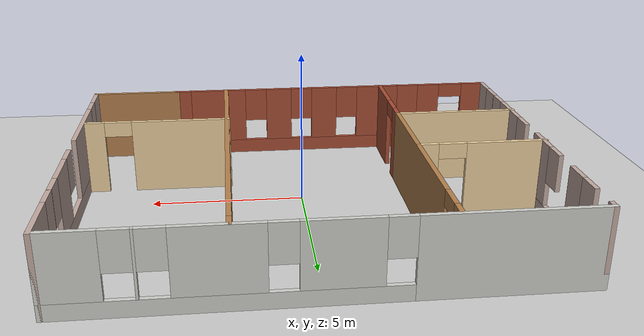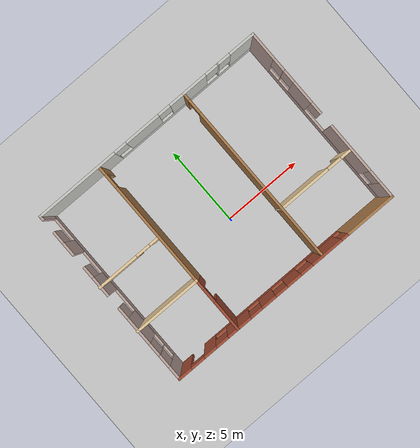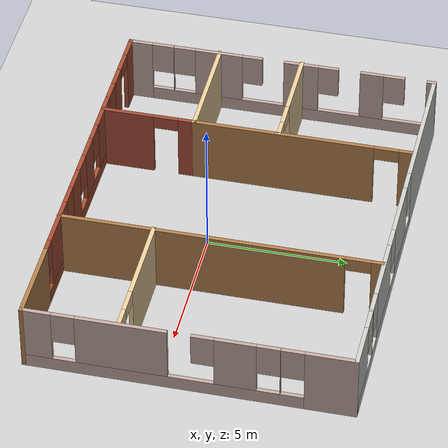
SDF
<sdf version="1.7">
 <world name="default">
  <light name="sun" type="directional">
   <pose>0 0 10 0 -0 0</pose>
   <diffuse>0.8 0.8 0.8 1</diffuse>
   <specular>0.2 0.2 0.2 1</specular>
   <attenuation>
    <range>1000</range>
    <constant>0.9</constant>
    <linear>0.01</linear>
    <quadratic>0.001</quadratic>
   </attenuation>
   <direction>-0.5 0.1 -0.9</direction>
   <spot><inner_angle>0</inner_angle><outer_angle>0</outer_angle><falloff>0</falloff></spot>
  </light>
  <model name="ground_plane">
   <static>1</static>
   <link name="link">
    <collision name="collision">
     <geometry><plane><normal>0 0 1</normal><size>100 100</size></plane></geometry>
     <surface>
      <contact><collide_bitmask>65535</collide_bitmask></contact>
      <friction><ode><mu>100</mu><mu2>50</mu2></ode></friction>
     </surface>
    </collision>
    <visual name="visual">
     <cast_shadows>0</cast_shadows>
     <geometry><plane><normal>0 0 1</normal><size>100 100</size></plane></geometry>
     <material>
      <script><uri>file://media/materials/scripts/gazebo.material</uri><name>Gazebo/Grey</name></script>
     </material>
    </visual>
   </link>
  </model>
  <gravity>0 0 -9.8</gravity>
  <magnetic_field>6e-06 2.3e-05 -4.2e-05</magnetic_field>
  <atmosphere type="adiabatic"/>
  <physics type="ode">
   <max_step_size>0.001</max_step_size>
   <real_time_factor>1</real_time_factor>
   <real_time_update_rate>1000</real_time_update_rate>
  </physics>
  <scene><ambient>0.4 0.4 0.4 1</ambient><background>0.7 0.7 0.7 1</background><shadows>1</shadows></scene>
  <spherical_coordinates>
   <surface_model>EARTH_WGS84</surface_model>
   <latitude_deg>0</latitude_deg>
   <longitude_deg>0</longitude_deg>
   <elevation>0</elevation>
   <heading_deg>0</heading_deg>
  </spherical_coordinates>
  <model name="mundogustavo.world">
   <pose>-0.160994 1.03883 0 0 -0 0</pose>
   <link name="Wall_1">
    <pose>-1.47401 -5.66883 0 0 -0 0</pose>
    <visual name="Wall_1_Visual_0">
     <pose>-5.53925 0 1.25 0 -0 0</pose>
     <geometry><box><size>0.921494 0.15 2.5</size></box></geometry>
     <material>
      <script><uri>file://media/materials/scripts/gazebo.material</uri><name>Gazebo/Bricks</name></script>
      <ambient>1 1 1 1</ambient>
     </material>
     <meta><layer>0</layer></meta>
    </visual>
    <collision name="Wall_1_Collision_0">
     <geometry><box><size>0.921494 0.15 2.5</size></box></geometry>
     <pose>-5.53925 0 1.25 0 -0 0</pose>
    </collision>
    <visual name="Wall_1_Visual_1">
     <pose>-3.75663 0 1.25 0 -0 0</pose>
     <geometry><box><size>0.843762 0.15 2.5</size></box></geometry>
     <material>
      <script><uri>file://media/materials/scripts/gazebo.material</uri><name>Gazebo/Bricks</name></script>
      <ambient>1 1 1 1</ambient>
     </material>
     <meta><layer>0</layer></meta>
    </visual>
    <collision name="Wall_1_Collision_1">
     <geometry><box><size>0.843762 0.15 2.5</size></box></geometry>
     <pose>-3.75663 0 1.25 0 -0 0</pose>
    </collision>
    <visual name="Wall_1_Visual_2">
     <pose>1.33263 0 0.25 0 -0 0</pose>
     <geometry><box><size>9.33474 0.15 0.5</size></box></geometry>
     <material>
      <script><uri>file://media/materials/scripts/gazebo.material</uri><name>Gazebo/Bricks</name></script>
      <ambient>1 1 1 1</ambient>
     </material>
     <meta><layer>0</layer></meta>
    </visual>
    <collision name="Wall_1_Collision_2">
     <geometry><box><size>9.33474 0.15 0.5</size></box></geometry>
     <pose>1.33263 0 0.25 0 -0 0</pose>
    </collision>
    <visual name="Wall_1_Visual_3">
     <pose>-1.74004 0 1.5 0 -0 0</pose>
     <geometry><box><size>1.58941 0.15 2</size></box></geometry>
     <material>
      <script><uri>file://media/materials/scripts/gazebo.material</uri><name>Gazebo/Bricks</name></script>
      <ambient>1 1 1 1</ambient>
     </material>
     <meta><layer>0</layer></meta>
    </visual>
    <collision name="Wall_1_Collision_3">
     <geometry><box><size>1.58941 0.15 2</size></box></geometry>
     <pose>-1.74004 0 1.5 0 -0 0</pose>
    </collision>
    <visual name="Wall_1_Visual_4">
     <pose>0.331797 0 1.5 0 -0 0</pose>
     <geometry><box><size>0.954253 0.15 2</size></box></geometry>
     <material>
      <script><uri>file://media/materials/scripts/gazebo.material</uri><name>Gazebo/Bricks</name></script>
      <ambient>1 1 1 1</ambient>
     </material>
     <meta><layer>0</layer></meta>
    </visual>
    <collision name="Wall_1_Collision_4">
     <geometry><box><size>0.954253 0.15 2</size></box></geometry>
     <pose>0.331797 0 1.5 0 -0 0</pose>
    </collision>
    <visual name="Wall_1_Visual_5">
     <pose>2.08605 0 1.5 0 -0 0</pose>
     <geometry><box><size>0.954253 0.15 2</size></box></geometry>
     <material>
      <script><uri>file://media/materials/scripts/gazebo.material</uri><name>Gazebo/Bricks</name></script>
      <ambient>1 1 1 1</ambient>
     </material>
     <meta><layer>0</layer></meta>
    </visual>
    <collision name="Wall_1_Collision_5">
     <geometry><box><size>0.954253 0.15 2</size></box></geometry>
     <pose>2.08605 0 1.5 0 -0 0</pose>
    </collision>
    <visual name="Wall_1_Visual_6">
     <pose>4.38473 0 1.5 0 -0 0</pose>
     <geometry><box><size>2.0431 0.15 2</size></box></geometry>
     <material>
      <script><uri>file://media/materials/scripts/gazebo.material</uri><name>Gazebo/Bricks</name></script>
      <ambient>1 1 1 1</ambient>
     </material>
     <meta><layer>0</layer></meta>
    </visual>
    <collision name="Wall_1_Collision_6">
     <geometry><box><size>2.0431 0.15 2</size></box></geometry>
     <pose>4.38473 0 1.5 0 -0 0</pose>
    </collision>
    <visual name="Wall_1_Visual_7">
     <pose>4.38473 0 1.5 0 -0 0</pose>
     <geometry><box><size>2.0431 0.15 2</size></box></geometry>
     <material>
      <script><uri>file://media/materials/scripts/gazebo.material</uri><name>Gazebo/Bricks</name></script>
      <ambient>1 1 1 1</ambient>
     </material>
     <meta><layer>0</layer></meta>
    </visual>
    <collision name="Wall_1_Collision_7">
     <geometry><box><size>2.0431 0.15 2</size></box></geometry>
     <pose>4.38473 0 1.5 0 -0 0</pose>
    </collision>
    <visual name="Wall_1_Visual_8">
     <pose>-2.93474 0 1.9 0 -0 0</pose>
     <geometry><box><size>0.8 0.15 1.2</size></box></geometry>
     <material>
      <script><uri>file://media/materials/scripts/gazebo.material</uri><name>Gazebo/Bricks</name></script>
      <ambient>1 1 1 1</ambient>
     </material>
     <meta><layer>0</layer></meta>
    </visual>
    <collision name="Wall_1_Collision_8">
     <geometry><box><size>0.8 0.15 1.2</size></box></geometry>
     <pose>-2.93474 0 1.9 0 -0 0</pose>
    </collision>
    <visual name="Wall_1_Visual_9">
     <pose>-0.54533 0 1.9 0 -0 0</pose>
     <geometry><box><size>0.8 0.15 1.2</size></box></geometry>
     <material>
      <script><uri>file://media/materials/scripts/gazebo.material</uri><name>Gazebo/Bricks</name></script>
      <ambient>1 1 1 1</ambient>
     </material>
     <meta><layer>0</layer></meta>
    </visual>
    <collision name="Wall_1_Collision_9">
     <geometry><box><size>0.8 0.15 1.2</size></box></geometry>
     <pose>-0.54533 0 1.9 0 -0 0</pose>
    </collision>
    <visual name="Wall_1_Visual_10">
     <pose>1.20892 0 1.9 0 -0 0</pose>
     <geometry><box><size>0.8 0.15 1.2</size></box></geometry>
     <material>
      <script><uri>file://media/materials/scripts/gazebo.material</uri><name>Gazebo/Bricks</name></script>
      <ambient>1 1 1 1</ambient>
     </material>
     <meta><layer>0</layer></meta>
    </visual>
    <collision name="Wall_1_Collision_10">
     <geometry><box><size>0.8 0.15 1.2</size></box></geometry>
     <pose>1.20892 0 1.9 0 -0 0</pose>
    </collision>
    <visual name="Wall_1_Visual_11">
     <pose>2.96318 0 1.9 0 -0 0</pose>
     <geometry><box><size>0.8 0.15 1.2</size></box></geometry>
     <material>
      <script><uri>file://media/materials/scripts/gazebo.material</uri><name>Gazebo/Bricks</name></script>
      <ambient>1 1 1 1</ambient>
     </material>
     <meta><layer>0</layer></meta>
    </visual>
    <collision name="Wall_1_Collision_11">
     <geometry><box><size>0.8 0.15 1.2</size></box></geometry>
     <pose>2.96318 0 1.9 0 -0 0</pose>
    </collision>
    <visual name="Wall_1_Visual_12">
     <pose>5.70314 0 1.9 0 -0 0</pose>
     <geometry><box><size>0.593723 0.15 1.2</size></box></geometry>
     <material>
      <script><uri>file://media/materials/scripts/gazebo.material</uri><name>Gazebo/Bricks</name></script>
      <ambient>1 1 1 1</ambient>
     </material>
     <meta><layer>0</layer></meta>
    </visual>
    <collision name="Wall_1_Collision_12">
     <geometry><box><size>0.593723 0.15 1.2</size></box></geometry>
     <pose>5.70314 0 1.9 0 -0 0</pose>
    </collision>
    <visual name="Wall_1_Visual_13">
     <pose>5.70314 0 1.9 0 -0 0</pose>
     <geometry><box><size>0.593723 0.15 1.2</size></box></geometry>
     <material>
      <script><uri>file://media/materials/scripts/gazebo.material</uri><name>Gazebo/Bricks</name></script>
      <ambient>1 1 1 1</ambient>
     </material>
     <meta><layer>0</layer></meta>
    </visual>
    <collision name="Wall_1_Collision_13">
     <geometry><box><size>0.593723 0.15 1.2</size></box></geometry>
     <pose>5.70314 0 1.9 0 -0 0</pose>
    </collision>
    <visual name="Wall_1_Visual_14">
     <pose>-4.62851 0 2.25 0 -0 0</pose>
     <geometry><box><size>0.9 0.15 0.5</size></box></geometry>
     <material>
      <script><uri>file://media/materials/scripts/gazebo.material</uri><name>Gazebo/Bricks</name></script>
      <ambient>1 1 1 1</ambient>
     </material>
     <meta><layer>0</layer></meta>
    </visual>
    <collision name="Wall_1_Collision_14">
     <geometry><box><size>0.9 0.15 0.5</size></box></geometry>
     <pose>-4.62851 0 2.25 0 -0 0</pose>
    </collision>
   </link>
   <link name="Wall_10">
    <collision name="Wall_10_Collision">
     <geometry><box><size>4.25 0.15 2.5</size></box></geometry>
     <pose>0 0 1.25 0 -0 0</pose>
    </collision>
    <visual name="Wall_10_Visual">
     <pose>0 0 1.25 0 -0 0</pose>
     <geometry><box><size>4.25 0.15 2.5</size></box></geometry>
     <material>
      <script><uri>file://media/materials/scripts/gazebo.material</uri><name>Gazebo/Grey</name></script>
      <ambient>0.921569 0.807843 0.615686 1</ambient>
     </material>
     <meta><layer>0</layer></meta>
    </visual>
    <pose>-5.38555 -2.30472 0 0 -0 0</pose>
   </link>
   <link name="Wall_15">
    <pose>-3.33555 -3.97972 0 0 -0 -1.5708</pose>
    <visual name="Wall_15_Visual_0">
     <pose>-1.41766 0 1.25 0 -0 0</pose>
     <geometry><box><size>0.664682 0.15 2.5</size></box></geometry>
     <material>
      <script><uri>file://media/materials/scripts/gazebo.material</uri><name>Gazebo/Bricks</name></script>
      <ambient>1 1 1 1</ambient>
     </material>
     <meta><layer>0</layer></meta>
    </visual>
    <collision name="Wall_15_Collision_0">
     <geometry><box><size>0.664682 0.15 2.5</size></box></geometry>
     <pose>-1.41766 0 1.25 0 -0 0</pose>
    </collision>
    <visual name="Wall_15_Visual_1">
     <pose>0.782341 0 1.25 0 -0 0</pose>
     <geometry><box><size>1.93532 0.15 2.5</size></box></geometry>
     <material>
      <script><uri>file://media/materials/scripts/gazebo.material</uri><name>Gazebo/Bricks</name></script>
      <ambient>1 1 1 1</ambient>
     </material>
     <meta><layer>0</layer></meta>
    </visual>
    <collision name="Wall_15_Collision_1">
     <geometry><box><size>1.93532 0.15 2.5</size></box></geometry>
     <pose>0.782341 0 1.25 0 -0 0</pose>
    </collision>
    <visual name="Wall_15_Visual_2">
     <pose>-0.635318 0 2.25 0 -0 0</pose>
     <geometry><box><size>0.9 0.15 0.5</size></box></geometry>
     <material>
      <script><uri>file://media/materials/scripts/gazebo.material</uri><name>Gazebo/Bricks</name></script>
      <ambient>1 1 1 1</ambient>
     </material>
     <meta><layer>0</layer></meta>
    </visual>
    <collision name="Wall_15_Collision_2">
     <geometry><box><size>0.9 0.15 0.5</size></box></geometry>
     <pose>-0.635318 0 2.25 0 -0 0</pose>
    </collision>
   </link>
   <link name="Wall_17">
    <pose>-3.33555 1.62028 0 0 -0 1.5708</pose>
    <visual name="Wall_17_Visual_0">
     <pose>-0.699779 0 1.25 0 -0 0</pose>
     <geometry><box><size>6.60044 0.15 2.5</size></box></geometry>
     <material>
      <script><uri>file://media/materials/scripts/gazebo.material</uri><name>Gazebo/Wood</name></script>
      <ambient>1 1 1 1</ambient>
     </material>
     <meta><layer>0</layer></meta>
    </visual>
    <collision name="Wall_17_Collision_0">
     <geometry><box><size>6.60044 0.15 2.5</size></box></geometry>
     <pose>-0.699779 0 1.25 0 -0 0</pose>
    </collision>
    <visual name="Wall_17_Visual_1">
     <pose>3.75022 0 1.25 0 -0 0</pose>
     <geometry><box><size>0.499559 0.15 2.5</size></box></geometry>
     <material>
      <script><uri>file://media/materials/scripts/gazebo.material</uri><name>Gazebo/Wood</name></script>
      <ambient>1 1 1 1</ambient>
     </material>
     <meta><layer>0</layer></meta>
    </visual>
    <collision name="Wall_17_Collision_1">
     <geometry><box><size>0.499559 0.15 2.5</size></box></geometry>
     <pose>3.75022 0 1.25 0 -0 0</pose>
    </collision>
    <visual name="Wall_17_Visual_2">
     <pose>3.05044 0 2.25 0 -0 0</pose>
     <geometry><box><size>0.9 0.15 0.5</size></box></geometry>
     <material>
      <script><uri>file://media/materials/scripts/gazebo.material</uri><name>Gazebo/Wood</name></script>
      <ambient>1 1 1 1</ambient>
     </material>
     <meta><layer>0</layer></meta>
    </visual>
    <collision name="Wall_17_Collision_2">
     <geometry><box><size>0.9 0.15 0.5</size></box></geometry>
     <pose>3.05044 0 2.25 0 -0 0</pose>
    </collision>
   </link>
   <link name="Wall_19">
    <pose>-5.40099 0.761652 0 0 -0 0</pose>
    <visual name="Wall_19_Visual_0">
     <pose>-0.806501 0 1.25 0 -0 0</pose>
     <geometry><box><size>2.637 0.15 2.5</size></box></geometry>
     <material>
      <script><uri>file://media/materials/scripts/gazebo.material</uri><name>Gazebo/Grey</name></script>
      <ambient>0.921569 0.807843 0.615686 1</ambient>
     </material>
     <meta><layer>0</layer></meta>
    </visual>
    <collision name="Wall_19_Collision_0">
     <geometry><box><size>2.637 0.15 2.5</size></box></geometry>
     <pose>-0.806501 0 1.25 0 -0 0</pose>
    </collision>
    <visual name="Wall_19_Visual_1">
     <pose>1.7685 0 1.25 0 -0 0</pose>
     <geometry><box><size>0.713002 0.15 2.5</size></box></geometry>
     <material>
      <script><uri>file://media/materials/scripts/gazebo.material</uri><name>Gazebo/Grey</name></script>
      <ambient>0.921569 0.807843 0.615686 1</ambient>
     </material>
     <meta><layer>0</layer></meta>
    </visual>
    <collision name="Wall_19_Collision_1">
     <geometry><box><size>0.713002 0.15 2.5</size></box></geometry>
     <pose>1.7685 0 1.25 0 -0 0</pose>
    </collision>
    <visual name="Wall_19_Visual_2">
     <pose>0.961998 0 2.25 0 -0 0</pose>
     <geometry><box><size>0.9 0.15 0.5</size></box></geometry>
     <material>
      <script><uri>file://media/materials/scripts/gazebo.material</uri><name>Gazebo/Grey</name></script>
      <ambient>0.921569 0.807843 0.615686 1</ambient>
     </material>
     <meta><layer>0</layer></meta>
    </visual>
    <collision name="Wall_19_Collision_2">
     <geometry><box><size>0.9 0.15 0.5</size></box></geometry>
     <pose>0.961998 0 2.25 0 -0 0</pose>
    </collision>
   </link>
   <link name="Wall_21">
    <pose>2.60826 -0.006171 0 0 -0 -1.5708</pose>
    <visual name="Wall_21_Visual_0">
     <pose>-5.49894 0 1.25 0 -0 0</pose>
     <geometry><box><size>0.502127 0.15 2.5</size></box></geometry>
     <material>
      <script><uri>file://media/materials/scripts/gazebo.material</uri><name>Gazebo/Wood</name></script>
      <ambient>1 1 1 1</ambient>
     </material>
     <meta><layer>0</layer></meta>
    </visual>
    <collision name="Wall_21_Collision_0">
     <geometry><box><size>0.502127 0.15 2.5</size></box></geometry>
     <pose>-5.49894 0 1.25 0 -0 0</pose>
    </collision>
    <visual name="Wall_21_Visual_1">
     <pose>0.701063 0 1.25 0 -0 0</pose>
     <geometry><box><size>10.0979 0.15 2.5</size></box></geometry>
     <material>
      <script><uri>file://media/materials/scripts/gazebo.material</uri><name>Gazebo/Wood</name></script>
      <ambient>1 1 1 1</ambient>
     </material>
     <meta><layer>0</layer></meta>
    </visual>
    <collision name="Wall_21_Collision_1">
     <geometry><box><size>10.0979 0.15 2.5</size></box></geometry>
     <pose>0.701063 0 1.25 0 -0 0</pose>
    </collision>
    <visual name="Wall_21_Visual_2">
     <pose>-4.79787 0 2.25 0 -0 0</pose>
     <geometry><box><size>0.9 0.15 0.5</size></box></geometry>
     <material>
      <script><uri>file://media/materials/scripts/gazebo.material</uri><name>Gazebo/Wood</name></script>
      <ambient>1 1 1 1</ambient>
     </material>
     <meta><layer>0</layer></meta>
    </visual>
    <collision name="Wall_21_Collision_2">
     <geometry><box><size>0.9 0.15 0.5</size></box></geometry>
     <pose>-4.79787 0 2.25 0 -0 0</pose>
    </collision>
   </link>
   <link name="Wall_23">
    <pose>5.00302 -2.34629 0 0 -0 0</pose>
    <visual name="Wall_23_Visual_0">
     <pose>-0.842509 0 1.25 0 -0 0</pose>
     <geometry><box><size>3.31498 0.15 2.5</size></box></geometry>
     <material>
      <script><uri>file://media/materials/scripts/gazebo.material</uri><name>Gazebo/Grey</name></script>
      <ambient>0.921569 0.807843 0.615686 1</ambient>
     </material>
     <meta><layer>0</layer></meta>
    </visual>
    <collision name="Wall_23_Collision_0">
     <geometry><box><size>3.31498 0.15 2.5</size></box></geometry>
     <pose>-0.842509 0 1.25 0 -0 0</pose>
    </collision>
    <visual name="Wall_23_Visual_1">
     <pose>2.10749 0 1.25 0 -0 0</pose>
     <geometry><box><size>0.785019 0.15 2.5</size></box></geometry>
     <material>
      <script><uri>file://media/materials/scripts/gazebo.material</uri><name>Gazebo/Grey</name></script>
      <ambient>0.921569 0.807843 0.615686 1</ambient>
     </material>
     <meta><layer>0</layer></meta>
    </visual>
    <collision name="Wall_23_Collision_1">
     <geometry><box><size>0.785019 0.15 2.5</size></box></geometry>
     <pose>2.10749 0 1.25 0 -0 0</pose>
    </collision>
    <visual name="Wall_23_Visual_2">
     <pose>1.26498 0 2.25 0 -0 0</pose>
     <geometry><box><size>0.9 0.15 0.5</size></box></geometry>
     <material>
      <script><uri>file://media/materials/scripts/gazebo.material</uri><name>Gazebo/Grey</name></script>
      <ambient>0.921569 0.807843 0.615686 1</ambient>
     </material>
     <meta><layer>0</layer></meta>
    </visual>
    <collision name="Wall_23_Collision_2">
     <geometry><box><size>0.9 0.15 0.5</size></box></geometry>
     <pose>1.26498 0 2.25 0 -0 0</pose>
    </collision>
   </link>
   <link name="Wall_4">
    <pose>-7.39901 0.00617 0 0 -0 1.5708</pose>
    <visual name="Wall_4_Visual_0">
     <pose>-5.29471 0 1.25 0 -0 0</pose>
     <geometry><box><size>0.91058 0.15 2.5</size></box></geometry>
     <material>
      <script><uri>file://media/materials/scripts/gazebo.material</uri><name>Gazebo/Grey</name></script>
      <ambient>0.760784 0.662745 0.627451 1</ambient>
     </material>
     <meta><layer>0</layer></meta>
    </visual>
    <collision name="Wall_4_Collision_0">
     <geometry><box><size>0.91058 0.15 2.5</size></box></geometry>
     <pose>-5.29471 0 1.25 0 -0 0</pose>
    </collision>
    <visual name="Wall_4_Visual_1">
     <pose>0.45529 0 0.25 0 -0 0</pose>
     <geometry><box><size>10.5894 0.15 0.5</size></box></geometry>
     <material>
      <script><uri>file://media/materials/scripts/gazebo.material</uri><name>Gazebo/Grey</name></script>
      <ambient>0.760784 0.662745 0.627451 1</ambient>
     </material>
     <meta><layer>0</layer></meta>
    </visual>
    <collision name="Wall_4_Collision_1">
     <geometry><box><size>10.5894 0.15 0.5</size></box></geometry>
     <pose>0.45529 0 0.25 0 -0 0</pose>
    </collision>
    <visual name="Wall_4_Visual_2">
     <pose>-4.0311 0 1.5 0 -0 0</pose>
     <geometry><box><size>0.016635 0.15 2</size></box></geometry>
     <material>
      <script><uri>file://media/materials/scripts/gazebo.material</uri><name>Gazebo/Grey</name></script>
      <ambient>0.760784 0.662745 0.627451 1</ambient>
     </material>
     <meta><layer>0</layer></meta>
    </visual>
    <collision name="Wall_4_Collision_2">
     <geometry><box><size>0.016635 0.15 2</size></box></geometry>
     <pose>-4.0311 0 1.5 0 -0 0</pose>
    </collision>
    <visual name="Wall_4_Visual_3">
     <pose>-2.33734 0 1.5 0 -0 0</pose>
     <geometry><box><size>1.77089 0.15 2</size></box></geometry>
     <material>
      <script><uri>file://media/materials/scripts/gazebo.material</uri><name>Gazebo/Grey</name></script>
      <ambient>0.760784 0.662745 0.627451 1</ambient>
     </material>
     <meta><layer>0</layer></meta>
    </visual>
    <collision name="Wall_4_Collision_3">
     <geometry><box><size>1.77089 0.15 2</size></box></geometry>
     <pose>-2.33734 0 1.5 0 -0 0</pose>
    </collision>
    <visual name="Wall_4_Visual_4">
     <pose>0.747725 0 1.5 0 -0 0</pose>
     <geometry><box><size>1.28696 0.15 2</size></box></geometry>
     <material>
      <script><uri>file://media/materials/scripts/gazebo.material</uri><name>Gazebo/Grey</name></script>
      <ambient>0.760784 0.662745 0.627451 1</ambient>
     </material>
     <meta><layer>0</layer></meta>
    </visual>
    <collision name="Wall_4_Collision_4">
     <geometry><box><size>1.28696 0.15 2</size></box></geometry>
     <pose>0.747725 0 1.5 0 -0 0</pose>
    </collision>
    <visual name="Wall_4_Visual_5">
     <pose>3.37911 0 1.5 0 -0 0</pose>
     <geometry><box><size>0.863516 0.15 2</size></box></geometry>
     <material>
      <script><uri>file://media/materials/scripts/gazebo.material</uri><name>Gazebo/Grey</name></script>
      <ambient>0.760784 0.662745 0.627451 1</ambient>
     </material>
     <meta><layer>0</layer></meta>
    </visual>
    <collision name="Wall_4_Collision_5">
     <geometry><box><size>0.863516 0.15 2</size></box></geometry>
     <pose>3.37911 0 1.5 0 -0 0</pose>
    </collision>
    <visual name="Wall_4_Visual_6">
     <pose>5.57363 0 1.5 0 -0 0</pose>
     <geometry><box><size>0.352747 0.15 2</size></box></geometry>
     <material>
      <script><uri>file://media/materials/scripts/gazebo.material</uri><name>Gazebo/Grey</name></script>
      <ambient>0.760784 0.662745 0.627451 1</ambient>
     </material>
     <meta><layer>0</layer></meta>
    </visual>
    <collision name="Wall_4_Collision_6">
     <geometry><box><size>0.352747 0.15 2</size></box></geometry>
     <pose>5.57363 0 1.5 0 -0 0</pose>
    </collision>
    <visual name="Wall_4_Visual_7">
     <pose>-4.43942 0 1.9 0 -0 0</pose>
     <geometry><box><size>0.8 0.15 1.2</size></box></geometry>
     <material>
      <script><uri>file://media/materials/scripts/gazebo.material</uri><name>Gazebo/Grey</name></script>
      <ambient>0.760784 0.662745 0.627451 1</ambient>
     </material>
     <meta><layer>0</layer></meta>
    </visual>
    <collision name="Wall_4_Collision_7">
     <geometry><box><size>0.8 0.15 1.2</size></box></geometry>
     <pose>-4.43942 0 1.9 0 -0 0</pose>
    </collision>
    <visual name="Wall_4_Visual_8">
     <pose>-3.62278 0 1.9 0 -0 0</pose>
     <geometry><box><size>0.8 0.15 1.2</size></box></geometry>
     <material>
      <script><uri>file://media/materials/scripts/gazebo.material</uri><name>Gazebo/Grey</name></script>
      <ambient>0.760784 0.662745 0.627451 1</ambient>
     </material>
     <meta><layer>0</layer></meta>
    </visual>
    <collision name="Wall_4_Collision_8">
     <geometry><box><size>0.8 0.15 1.2</size></box></geometry>
     <pose>-3.62278 0 1.9 0 -0 0</pose>
    </collision>
    <visual name="Wall_4_Visual_9">
     <pose>-1.07383 0 1.9 0 -0 0</pose>
     <geometry><box><size>0.756144 0.15 1.2</size></box></geometry>
     <material>
      <script><uri>file://media/materials/scripts/gazebo.material</uri><name>Gazebo/Grey</name></script>
      <ambient>0.760784 0.662745 0.627451 1</ambient>
     </material>
     <meta><layer>0</layer></meta>
    </visual>
    <collision name="Wall_4_Collision_9">
     <geometry><box><size>0.756144 0.15 1.2</size></box></geometry>
     <pose>-1.07383 0 1.9 0 -0 0</pose>
    </collision>
    <visual name="Wall_4_Visual_10">
     <pose>1.76927 0 1.9 0 -0 0</pose>
     <geometry><box><size>0.756144 0.15 1.2</size></box></geometry>
     <material>
      <script><uri>file://media/materials/scripts/gazebo.material</uri><name>Gazebo/Grey</name></script>
      <ambient>0.760784 0.662745 0.627451 1</ambient>
     </material>
     <meta><layer>0</layer></meta>
    </visual>
    <collision name="Wall_4_Collision_10">
     <geometry><box><size>0.756144 0.15 1.2</size></box></geometry>
     <pose>1.76927 0 1.9 0 -0 0</pose>
    </collision>
    <visual name="Wall_4_Visual_11">
     <pose>4.20406 0 1.9 0 -0 0</pose>
     <geometry><box><size>0.786389 0.15 1.2</size></box></geometry>
     <material>
      <script><uri>file://media/materials/scripts/gazebo.material</uri><name>Gazebo/Grey</name></script>
      <ambient>0.760784 0.662745 0.627451 1</ambient>
     </material>
     <meta><layer>0</layer></meta>
    </visual>
    <collision name="Wall_4_Collision_11">
     <geometry><box><size>0.786389 0.15 1.2</size></box></geometry>
     <pose>4.20406 0 1.9 0 -0 0</pose>
    </collision>
   </link>
   <link name="Wall_6">
    <pose>0.025994 5.68117 0 0 -0 0</pose>
    <visual name="Wall_6_Visual_0">
     <pose>-4.86681 0 1.25 0 -0 0</pose>
     <geometry><box><size>5.26639 0.15 2.5</size></box></geometry>
     <material>
      <script><uri>file://media/materials/scripts/gazebo.material</uri><name>Gazebo/CeilingTiled</name></script>
      <ambient>1 1 1 1</ambient>
     </material>
     <meta><layer>0</layer></meta>
    </visual>
    <collision name="Wall_6_Collision_0">
     <geometry><box><size>5.26639 0.15 2.5</size></box></geometry>
     <pose>-4.86681 0 1.25 0 -0 0</pose>
    </collision>
    <visual name="Wall_6_Visual_1">
     <pose>2.6332 0 0.25 0 -0 0</pose>
     <geometry><box><size>9.73361 0.15 0.5</size></box></geometry>
     <material>
      <script><uri>file://media/materials/scripts/gazebo.material</uri><name>Gazebo/CeilingTiled</name></script>
      <ambient>1 1 1 1</ambient>
     </material>
     <meta><layer>0</layer></meta>
    </visual>
    <collision name="Wall_6_Collision_1">
     <geometry><box><size>9.73361 0.15 0.5</size></box></geometry>
     <pose>2.6332 0 0.25 0 -0 0</pose>
    </collision>
    <visual name="Wall_6_Visual_2">
     <pose>-0.3062 0 1.5 0 -0 0</pose>
     <geometry><box><size>2.25482 0.15 2</size></box></geometry>
     <material>
      <script><uri>file://media/materials/scripts/gazebo.material</uri><name>Gazebo/CeilingTiled</name></script>
      <ambient>1 1 1 1</ambient>
     </material>
     <meta><layer>0</layer></meta>
    </visual>
    <collision name="Wall_6_Collision_2">
     <geometry><box><size>2.25482 0.15 2</size></box></geometry>
     <pose>-0.3062 0 1.5 0 -0 0</pose>
    </collision>
    <visual name="Wall_6_Visual_3">
     <pose>2.8696 0 1.5 0 -0 0</pose>
     <geometry><box><size>2.49679 0.15 2</size></box></geometry>
     <material>
      <script><uri>file://media/materials/scripts/gazebo.material</uri><name>Gazebo/CeilingTiled</name></script>
      <ambient>1 1 1 1</ambient>
     </material>
     <meta><layer>0</layer></meta>
    </visual>
    <collision name="Wall_6_Collision_3">
     <geometry><box><size>2.49679 0.15 2</size></box></geometry>
     <pose>2.8696 0 1.5 0 -0 0</pose>
    </collision>
    <visual name="Wall_6_Visual_4">
     <pose>4.95656 0 1.5 0 -0 0</pose>
     <geometry><box><size>0.077127 0.15 2</size></box></geometry>
     <material>
      <script><uri>file://media/materials/scripts/gazebo.material</uri><name>Gazebo/CeilingTiled</name></script>
      <ambient>1 1 1 1</ambient>
     </material>
     <meta><layer>0</layer></meta>
    </visual>
    <collision name="Wall_6_Collision_4">
     <geometry><box><size>0.077127 0.15 2</size></box></geometry>
     <pose>4.95656 0 1.5 0 -0 0</pose>
    </collision>
    <visual name="Wall_6_Visual_5">
     <pose>6.64756 0 1.5 0 -0 0</pose>
     <geometry><box><size>1.70488 0.15 2</size></box></geometry>
     <material>
      <script><uri>file://media/materials/scripts/gazebo.material</uri><name>Gazebo/CeilingTiled</name></script>
      <ambient>1 1 1 1</ambient>
     </material>
     <meta><layer>0</layer></meta>
    </visual>
    <collision name="Wall_6_Collision_5">
     <geometry><box><size>1.70488 0.15 2</size></box></geometry>
     <pose>6.64756 0 1.5 0 -0 0</pose>
    </collision>
    <visual name="Wall_6_Visual_6">
     <pose>-1.83361 0 1.9 0 -0 0</pose>
     <geometry><box><size>0.8 0.15 1.2</size></box></geometry>
     <material>
      <script><uri>file://media/materials/scripts/gazebo.material</uri><name>Gazebo/CeilingTiled</name></script>
      <ambient>1 1 1 1</ambient>
     </material>
     <meta><layer>0</layer></meta>
    </visual>
    <collision name="Wall_6_Collision_6">
     <geometry><box><size>0.8 0.15 1.2</size></box></geometry>
     <pose>-1.83361 0 1.9 0 -0 0</pose>
    </collision>
    <visual name="Wall_6_Visual_7">
     <pose>1.22121 0 1.9 0 -0 0</pose>
     <geometry><box><size>0.8 0.15 1.2</size></box></geometry>
     <material>
      <script><uri>file://media/materials/scripts/gazebo.material</uri><name>Gazebo/CeilingTiled</name></script>
      <ambient>1 1 1 1</ambient>
     </material>
     <meta><layer>0</layer></meta>
    </visual>
    <collision name="Wall_6_Collision_7">
     <geometry><box><size>0.8 0.15 1.2</size></box></geometry>
     <pose>1.22121 0 1.9 0 -0 0</pose>
    </collision>
    <visual name="Wall_6_Visual_8">
     <pose>4.518 0 1.9 0 -0 0</pose>
     <geometry><box><size>0.8 0.15 1.2</size></box></geometry>
     <material>
      <script><uri>file://media/materials/scripts/gazebo.material</uri><name>Gazebo/CeilingTiled</name></script>
      <ambient>1 1 1 1</ambient>
     </material>
     <meta><layer>0</layer></meta>
    </visual>
    <collision name="Wall_6_Collision_8">
     <geometry><box><size>0.8 0.15 1.2</size></box></geometry>
     <pose>4.518 0 1.9 0 -0 0</pose>
    </collision>
    <visual name="Wall_6_Visual_9">
     <pose>5.39512 0 1.9 0 -0 0</pose>
     <geometry><box><size>0.8 0.15 1.2</size></box></geometry>
     <material>
      <script><uri>file://media/materials/scripts/gazebo.material</uri><name>Gazebo/CeilingTiled</name></script>
      <ambient>1 1 1 1</ambient>
     </material>
     <meta><layer>0</layer></meta>
    </visual>
    <collision name="Wall_6_Collision_9">
     <geometry><box><size>0.8 0.15 1.2</size></box></geometry>
     <pose>5.39512 0 1.9 0 -0 0</pose>
    </collision>
   </link>
   <link name="Wall_7">
    <pose>7.45099 0.00617 0 0 -0 -1.5708</pose>
    <visual name="Wall_7_Visual_0">
     <pose>-4.84773 0 1.25 0 -0 0</pose>
     <geometry><box><size>1.80454 0.15 2.5</size></box></geometry>
     <material>
      <script><uri>file://media/materials/scripts/gazebo.material</uri><name>Gazebo/Grey</name></script>
      <ambient>0.760784 0.662745 0.627451 1</ambient>
     </material>
     <meta><layer>0</layer></meta>
    </visual>
    <collision name="Wall_7_Collision_0">
     <geometry><box><size>1.80454 0.15 2.5</size></box></geometry>
     <pose>-4.84773 0 1.25 0 -0 0</pose>
    </collision>
    <visual name="Wall_7_Visual_1">
     <pose>0.902271 0 0.25 0 -0 0</pose>
     <geometry><box><size>9.69546 0.15 0.5</size></box></geometry>
     <material>
      <script><uri>file://media/materials/scripts/gazebo.material</uri><name>Gazebo/Grey</name></script>
      <ambient>0.760784 0.662745 0.627451 1</ambient>
     </material>
     <meta><layer>0</layer></meta>
    </visual>
    <collision name="Wall_7_Collision_1">
     <geometry><box><size>9.69546 0.15 0.5</size></box></geometry>
     <pose>0.902271 0 0.25 0 -0 0</pose>
    </collision>
    <visual name="Wall_7_Visual_2">
     <pose>-3.13714 0 1.5 0 -0 0</pose>
     <geometry><box><size>0.016635 0.15 2</size></box></geometry>
     <material>
      <script><uri>file://media/materials/scripts/gazebo.material</uri><name>Gazebo/Grey</name></script>
      <ambient>0.760784 0.662745 0.627451 1</ambient>
     </material>
     <meta><layer>0</layer></meta>
    </visual>
    <collision name="Wall_7_Collision_2">
     <geometry><box><size>0.016635 0.15 2</size></box></geometry>
     <pose>-3.13714 0 1.5 0 -0 0</pose>
    </collision>
    <visual name="Wall_7_Visual_3">
     <pose>-1.60973 0 1.5 0 -0 0</pose>
     <geometry><box><size>1.43819 0.15 2</size></box></geometry>
     <material>
      <script><uri>file://media/materials/scripts/gazebo.material</uri><name>Gazebo/Grey</name></script>
      <ambient>0.760784 0.662745 0.627451 1</ambient>
     </material>
     <meta><layer>0</layer></meta>
    </visual>
    <collision name="Wall_7_Collision_3">
     <geometry><box><size>1.43819 0.15 2</size></box></geometry>
     <pose>-1.60973 0 1.5 0 -0 0</pose>
    </collision>
    <visual name="Wall_7_Visual_4">
     <pose>2.27685 0 1.5 0 -0 0</pose>
     <geometry><box><size>3.16219 0.15 2</size></box></geometry>
     <material>
      <script><uri>file://media/materials/scripts/gazebo.material</uri><name>Gazebo/Grey</name></script>
      <ambient>0.760784 0.662745 0.627451 1</ambient>
     </material>
     <meta><layer>0</layer></meta>
    </visual>
    <collision name="Wall_7_Collision_4">
     <geometry><box><size>3.16219 0.15 2</size></box></geometry>
     <pose>2.27685 0 1.5 0 -0 0</pose>
    </collision>
    <visual name="Wall_7_Visual_5">
     <pose>5.20397 0 1.5 0 -0 0</pose>
     <geometry><box><size>1.09205 0.15 2</size></box></geometry>
     <material>
      <script><uri>file://media/materials/scripts/gazebo.material</uri><name>Gazebo/Grey</name></script>
      <ambient>0.760784 0.662745 0.627451 1</ambient>
     </material>
     <meta><layer>0</layer></meta>
    </visual>
    <collision name="Wall_7_Collision_5">
     <geometry><box><size>1.09205 0.15 2</size></box></geometry>
     <pose>5.20397 0 1.5 0 -0 0</pose>
    </collision>
    <visual name="Wall_7_Visual_6">
     <pose>-3.54546 0 1.9 0 -0 0</pose>
     <geometry><box><size>0.8 0.15 1.2</size></box></geometry>
     <material>
      <script><uri>file://media/materials/scripts/gazebo.material</uri><name>Gazebo/Grey</name></script>
      <ambient>0.760784 0.662745 0.627451 1</ambient>
     </material>
     <meta><layer>0</layer></meta>
    </visual>
    <collision name="Wall_7_Collision_6">
     <geometry><box><size>0.8 0.15 1.2</size></box></geometry>
     <pose>-3.54546 0 1.9 0 -0 0</pose>
    </collision>
    <visual name="Wall_7_Visual_7">
     <pose>-2.72882 0 1.9 0 -0 0</pose>
     <geometry><box><size>0.8 0.15 1.2</size></box></geometry>
     <material>
      <script><uri>file://media/materials/scripts/gazebo.material</uri><name>Gazebo/Grey</name></script>
      <ambient>0.760784 0.662745 0.627451 1</ambient>
     </material>
     <meta><layer>0</layer></meta>
    </visual>
    <collision name="Wall_7_Collision_7">
     <geometry><box><size>0.8 0.15 1.2</size></box></geometry>
     <pose>-2.72882 0 1.9 0 -0 0</pose>
    </collision>
    <visual name="Wall_7_Visual_8">
     <pose>-0.497442 0 1.9 0 -0 0</pose>
     <geometry><box><size>0.786389 0.15 1.2</size></box></geometry>
     <material>
      <script><uri>file://media/materials/scripts/gazebo.material</uri><name>Gazebo/Grey</name></script>
      <ambient>0.760784 0.662745 0.627451 1</ambient>
     </material>
     <meta><layer>0</layer></meta>
    </visual>
    <collision name="Wall_7_Collision_8">
     <geometry><box><size>0.786389 0.15 1.2</size></box></geometry>
     <pose>-0.497442 0 1.9 0 -0 0</pose>
    </collision>
    <visual name="Wall_7_Visual_9">
     <pose>4.25795 0 1.9 0 -0 0</pose>
     <geometry><box><size>0.8 0.15 1.2</size></box></geometry>
     <material>
      <script><uri>file://media/materials/scripts/gazebo.material</uri><name>Gazebo/Grey</name></script>
      <ambient>0.760784 0.662745 0.627451 1</ambient>
     </material>
     <meta><layer>0</layer></meta>
    </visual>
    <collision name="Wall_7_Collision_9">
     <geometry><box><size>0.8 0.15 1.2</size></box></geometry>
     <pose>4.25795 0 1.9 0 -0 0</pose>
    </collision>
   </link>
   <link name="Wall_8">
    <collision name="Wall_8_Collision">
     <geometry><box><size>3.15 0.15 2.5</size></box></geometry>
     <pose>0 0 1.25 0 -0 0</pose>
    </collision>
    <visual name="Wall_8_Visual">
     <pose>0 0 1.25 0 -0 0</pose>
     <geometry><box><size>3.15 0.15 2.5</size></box></geometry>
     <material>
      <script><uri>file://media/materials/scripts/gazebo.material</uri><name>Gazebo/Wood</name></script>
      <ambient>1 1 1 1</ambient>
     </material>
     <meta><layer>0</layer></meta>
    </visual>
    <pose>5.95099 -5.66883 0 0 -0 3.14159</pose>
   </link>
   <static>1</static>
  </model>
 </world>
</sdf>
